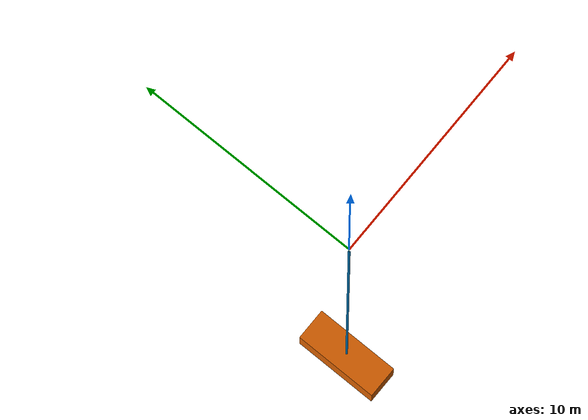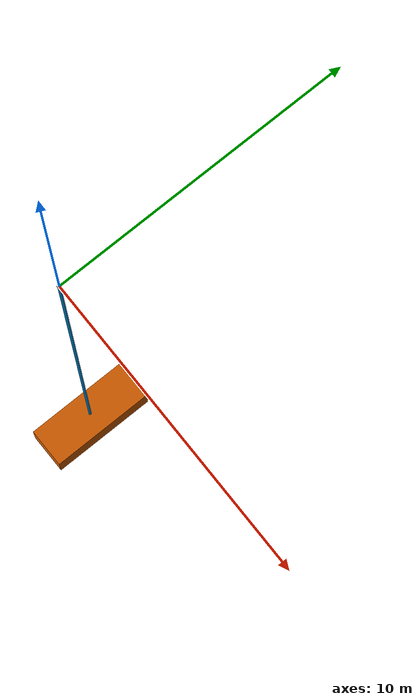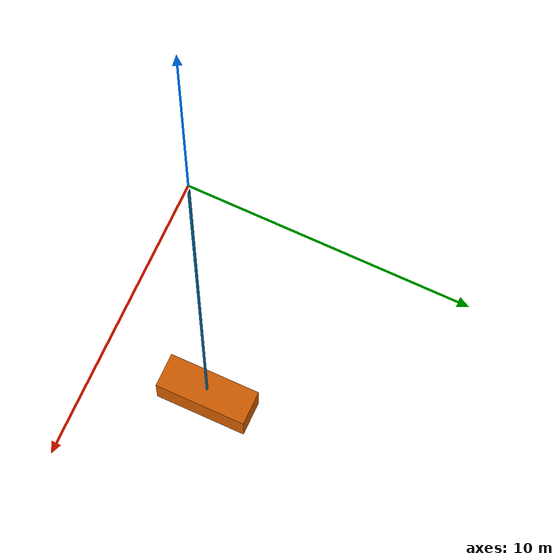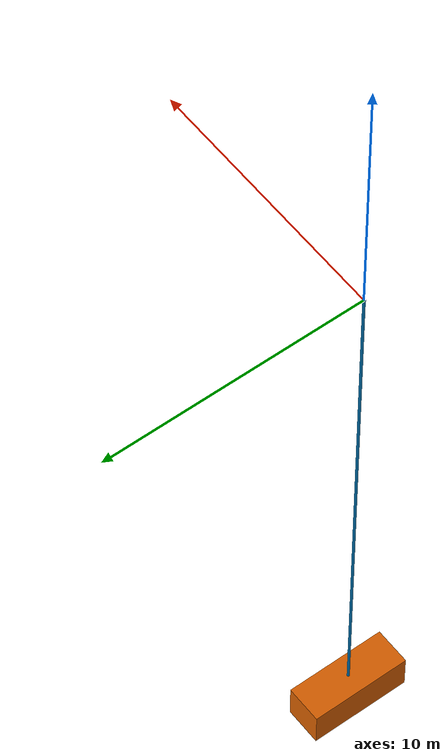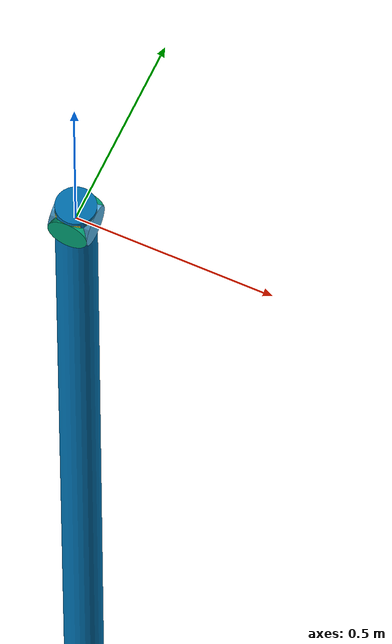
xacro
<?xml version="1.0"?>
<robot name="rope_load_model" xmlns:xacro="http://www.ros.org/wiki/xacro">

	<xacro:include filename="payload_foronly.urdf.xacro"/>

	<link name="base_link"/>

	<xacro:payload_macro parent="base_link"/>

</robot>

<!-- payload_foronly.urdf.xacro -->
<robot name="k_crane" xmlns:xacro="http://www.ros.org/wiki/xacro">
<xacro:macro name="payload_macro" params="parent">
	<link name="rope1_link">
		<origin xyz="0 0 0" rpy="0 ${pi/2} 0"/>
		<inertial>
			<origin xyz="0 0 0" rpy="0 ${pi/2} 0"/>
			<geometry>
				<cylinder radius="0.05" length="0.1"/>
			</geometry>
			<mass value="0.1"/>
			<inertia
				ixx="0.0001"
				ixy="0.0"
				ixz="0.0"
				iyy="0.0001"
				iyz="0.0"
				izz="0.0001"/>
		</inertial>
		<visual>
			<origin xyz="0 0 0" rpy="0 ${pi/2} 0"/>
			<geometry>
				<cylinder radius="0.05" length="0.1"/>
			</geometry>
		</visual>
		<collision>
			<origin xyz="0 0 0" rpy="0 ${pi/2} 0"/>
			<geometry>
				<cylinder radius="0.05" length="0.1"/>
			</geometry>
		</collision>
	</link>

	<joint name="joint_boom1" type="fixed"><!-- revolute-->
		<parent link="${parent}"/>
		<child  link="rope1_link"/>
		<!-- don't change this tag. no relationshop between rope long-->
		<origin xyz="0 0 0" rpy="0 0 0"/><!--0 ${-def_pitch + 0.06} 0-->
		<!--origin xyz="31.5 0 -0.5" rpy="0 ${pi/4 + 0.06} 0"/--><!--0 ${-def_pitch + 0.06} 0-->
		<axis xyz="1 0 0"/>
	</joint>

	<link name="rope2_link">
		<origin xyz="0 0 0" rpy="$0 0 0"/>
		<inertial>
			<origin xyz="0 0 0" rpy="${pi/2} 0 0"/>
			<geometry>
				<cylinder radius="0.05" length="0.1"/>
			</geometry>
			<mass value="0.1"/>
			<inertia
				ixx="0.0001"
				ixy="0.0"
				ixz="0.0"
				iyy="0.0001"
				iyz="0.0"
				izz="0.0001"/>
		</inertial>
		<visual>
			<origin xyz="0 0 0" rpy="${pi/2} 0 0"/>
			<geometry>
				<cylinder radius="0.05" length="0.1"/>
			</geometry>
		</visual>
		<collision>
			<origin xyz="0 0 0" rpy="${pi/2} 0 0"/>
			<geometry>
				<cylinder radius="0.05" length="0.1"/>
			</geometry>
		</collision>
	</link>

	<joint name="joint12" type="fixed"><!-- revolute-->
		<parent link="rope1_link"/>
		<child  link="rope2_link"/>
		<origin xyz="0 0 0" rpy="0 0 0"/>
		<axis xyz="0 1 0"/>
		<limit upper="${2*pi/20}" lower="${pi/20}" effort="0" velocity="0"/>
		<dynamics friction="5"/>
	</joint>

	<link name="rope3_link">
		<origin xyz="0 0 0" rpy="0 0 0"/>
		<inertial>
			<geometry>
				<cylinder radius="0.05" length="0.1"/>
			</geometry>
			<mass value="0.1"/>
			<inertia
				ixx="0.0001"
				ixy="0.0"
				ixz="0.0"
				iyy="0.0001"
				iyz="0.0"
				izz="0.0001"/>
		</inertial>
		<visual>
			<geometry>
				<cylinder radius="0.05" length="0.1"/>
			</geometry>
		</visual>
		<collision>
			<geometry>
				<cylinder radius="0.05" length="0.1"/>
			</geometry>
		</collision>
	</link>

	<!-- previous : continuous -->
	<joint name="joint23" type="fixed">
		<parent link="rope2_link"/>
		<child  link="rope3_link"/>
		<dynamics friction="5"/>
		<origin xyz="0 0 0" rpy="0 0 0"/>
		<axis xyz="0 0 1"/>
		<limit upper="${pi/2}" lower="${pi/(-2)}" effort="0" velocity="0"/>
	</joint>

	<link name="rope4_link">
		<origin xyz="0 0 -14" rpy="0 0 0"/>
		<inertial>
			<geometry>
				<!--26-1.357-0.757*2=23.121 is setted to put payload 3m on the ground-->
				<!--26-5.357-0.757*2=19.629 is setted to put payload 3m on the ground-->
				<cylinder radius="0.05" length="23.121"/>
			</geometry>
			<mass value="0.1"/>
			<inertia
				ixx="53.4580641"
				ixy="0.0"
				ixz="0.0"
				iyy="53.4580641"
				iyz="0.0"
				izz="53.4580641"/>
		</inertial>
		<visual>
			<geometry>
				<!--26-1.357-0.757*2=23.121 is setted to put payload 3m on the ground-->
				<!--26-5.357-0.757*2=19.629 is setted to put payload 3m on the ground-->
				<cylinder radius="0.05" length="23.121"/>
			</geometry>
		</visual>
		<collision>
			<geometry>
				<!--26-1.357-0.757*2=23.121 is setted to put payload 3m on the ground-->
				<!--26-5.357-0.757*2=19.629 is setted to put payload 3m on the ground-->
				<cylinder radius="0.05" length="23.121"/>
			</geometry>
		</collision>
	</link>

	<joint name="joint34" type="fixed">
		<parent link="rope3_link"/>
		<child  link="rope4_link"/>
		<!--defolt coordinate is 0 0 -12.5-->
		<!-- exp6 : -12.5 + 2.1 = 9.4 -->
		<origin xyz="0 0 -11.5" rpy="0 0 0"/>
		<limit upper="${pi/2}" lower="${pi/(-2)}" effort="0" velocity="100"/>
	</joint>

	<link name="payload_link">
		<origin xyz="0 0 0" rpy="0 0 0"/>
		<inertial>
			<geometry>
				<box size="1.5 4.0 1.5"/>
			</geometry>
			<mass value="2000"/>
			<inertia
				ixx="200.0"
				ixy="0.0"
				ixz="0.0"
				iyy="200.0"
				iyz="0.0"
				izz="200.0"/>
		</inertial>
		<visual>
			<geometry>
				<!--box size="1 3.7 0.476"/-->
				<box size="1.5 4.0 1.5"/>
			</geometry>
		</visual>
		<collision>
			<geometry>
				<!--box size="1 3.7 0.476"/-->
				<box size="1.5 4.0 1.5"/>
			</geometry>
		</collision>
	</link>

	<!-- previous : continuous -->
	<joint name="joint4payload" type="fixed">
		<parent link="rope4_link"/>
		<child  link="payload_link"/>
		<!-- -12.5 is a joint coordinate between rope and payload-->
		<!-- in this setting, payload is 2.243m avobe the ground-->
		<!-- exp6 : -11.743 + 2.2 = -9.543 -->
		<origin xyz="0 0 -11.5" rpy="0 0 0"/>
		<limit upper="${pi}" lower="${-pi}" effort="0" velocity="0"/>
		<axis xyz="0 0 1"/>
	</joint>
</xacro:macro>
</robot>
